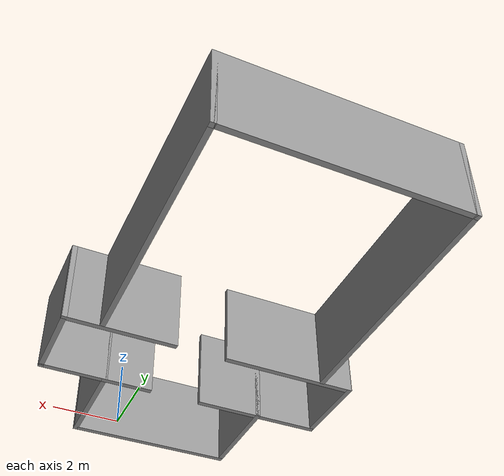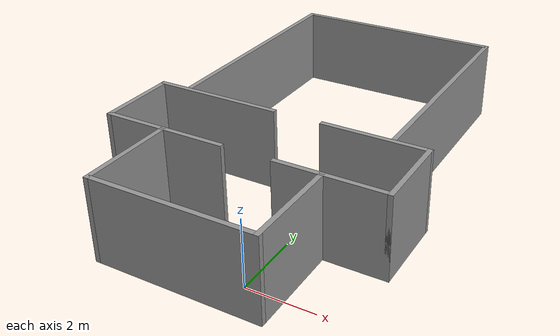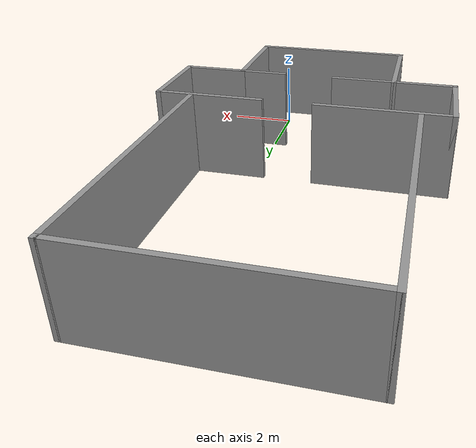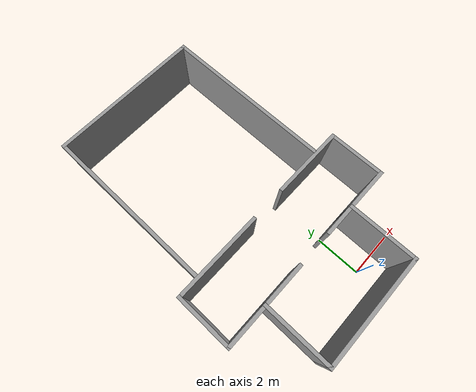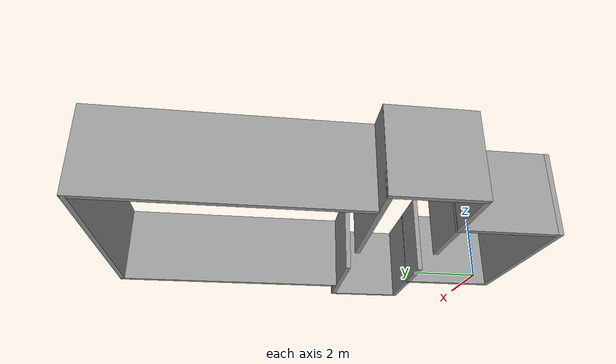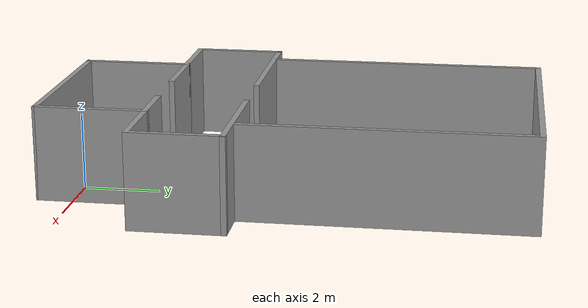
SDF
<?xml version='1.0'?>
<sdf version='1.7'>
  <model name='conference_room'>
    <pose>-1.36978 5.44487 0 0 -0 0</pose>
    <link name='Wall_17'>
      <collision name='Wall_17_Collision'>
        <geometry>
          <box>
            <size>3 0.15 2.5</size>
          </box>
        </geometry>
        <pose>0 0 1.25 0 -0 0</pose>
      </collision>
      <visual name='Wall_17_Visual'>
        <pose>0 0 1.25 0 -0 0</pose>
        <geometry>
          <box>
            <size>3 0.15 2.5</size>
          </box>
        </geometry>
        <material>
          <script>
            <uri>file://media/materials/scripts/gazebo.material</uri>
            <name>Gazebo/Grey</name>
          </script>
          <ambient>1 1 1 1</ambient>
        </material>
        <meta>
          <layer>0</layer>
        </meta>
      </visual>
      <pose>2.4174 -4.91209 0 0 -0 -1.5708</pose>
    </link>
    <link name='Wall_19'>
      <collision name='Wall_19_Collision'>
        <geometry>
          <box>
            <size>5 0.15 2.5</size>
          </box>
        </geometry>
        <pose>0 0 1.25 0 -0 0</pose>
      </collision>
      <visual name='Wall_19_Visual'>
        <pose>0 0 1.25 0 -0 0</pose>
        <geometry>
          <box>
            <size>5 0.15 2.5</size>
          </box>
        </geometry>
        <material>
          <script>
            <uri>file://media/materials/scripts/gazebo.material</uri>
            <name>Gazebo/Grey</name>
          </script>
          <ambient>1 1 1 1</ambient>
        </material>
        <meta>
          <layer>0</layer>
        </meta>
      </visual>
      <pose>-0.007604 -6.33709 0 0 -0 3.14159</pose>
    </link>
    <link name='Wall_20'>
      <collision name='Wall_20_Collision'>
        <geometry>
          <box>
            <size>3 0.15 2.5</size>
          </box>
        </geometry>
        <pose>0 0 1.25 0 -0 0</pose>
      </collision>
      <visual name='Wall_20_Visual'>
        <pose>0 0 1.25 0 -0 0</pose>
        <geometry>
          <box>
            <size>3 0.15 2.5</size>
          </box>
        </geometry>
        <material>
          <script>
            <uri>file://media/materials/scripts/gazebo.material</uri>
            <name>Gazebo/Grey</name>
          </script>
          <ambient>1 1 1 1</ambient>
        </material>
        <meta>
          <layer>0</layer>
        </meta>
      </visual>
      <pose>-2.4326 -4.91209 0 0 -0 1.5708</pose>
    </link>
    <link name='Wall_21'>
      <collision name='Wall_21_Collision'>
        <geometry>
          <box>
            <size>2 0.15 2.5</size>
          </box>
        </geometry>
        <pose>0 0 1.25 0 -0 0</pose>
      </collision>
      <visual name='Wall_21_Visual'>
        <pose>0 0 1.25 0 -0 0</pose>
        <geometry>
          <box>
            <size>2 0.15 2.5</size>
          </box>
        </geometry>
        <material>
          <script>
            <uri>file://media/materials/scripts/gazebo.material</uri>
            <name>Gazebo/Grey</name>
          </script>
          <ambient>1 1 1 1</ambient>
        </material>
        <meta>
          <layer>0</layer>
        </meta>
      </visual>
      <pose>-1.5076 -3.48709 0 0 -0 0</pose>
    </link>
    <link name='Wall_23'>
      <collision name='Wall_23_Collision'>
        <geometry>
          <box>
            <size>1.5 0.15 2.5</size>
          </box>
        </geometry>
        <pose>0 0 1.25 0 -0 0</pose>
      </collision>
      <visual name='Wall_23_Visual'>
        <pose>0 0 1.25 0 -0 0</pose>
        <geometry>
          <box>
            <size>1.5 0.15 2.5</size>
          </box>
        </geometry>
        <material>
          <script>
            <uri>file://media/materials/scripts/gazebo.material</uri>
            <name>Gazebo/Grey</name>
          </script>
          <ambient>1 1 1 1</ambient>
        </material>
        <meta>
          <layer>0</layer>
        </meta>
      </visual>
      <pose>1.7424 -3.48709 0 0 -0 3.14159</pose>
    </link>
    <link name='Wall_25'>
      <collision name='Wall_25_Collision'>
        <geometry>
          <box>
            <size>2 0.15 2.5</size>
          </box>
        </geometry>
        <pose>0 0 1.25 0 -0 0</pose>
      </collision>
      <visual name='Wall_25_Visual'>
        <pose>0 0 1.25 0 -0 0</pose>
        <geometry>
          <box>
            <size>2 0.15 2.5</size>
          </box>
        </geometry>
        <material>
          <script>
            <uri>file://media/materials/scripts/gazebo.material</uri>
            <name>Gazebo/Grey</name>
          </script>
          <ambient>1 1 1 1</ambient>
        </material>
        <meta>
          <layer>0</layer>
        </meta>
      </visual>
      <pose>3.3424 -3.48709 0 0 -0 0</pose>
    </link>
    <link name='Wall_26'>
      <collision name='Wall_26_Collision'>
        <geometry>
          <box>
            <size>2.5 0.15 2.5</size>
          </box>
        </geometry>
        <pose>0 0 1.25 0 -0 0</pose>
      </collision>
      <visual name='Wall_26_Visual'>
        <pose>0 0 1.25 0 -0 0</pose>
        <geometry>
          <box>
            <size>2.5 0.15 2.5</size>
          </box>
        </geometry>
        <material>
          <script>
            <uri>file://media/materials/scripts/gazebo.material</uri>
            <name>Gazebo/Grey</name>
          </script>
          <ambient>1 1 1 1</ambient>
        </material>
        <meta>
          <layer>0</layer>
        </meta>
      </visual>
      <pose>4.2674 -2.31209 0 0 -0 1.5708</pose>
    </link>
    <link name='Wall_27'>
      <collision name='Wall_27_Collision'>
        <geometry>
          <box>
            <size>3.25 0.15 2.5</size>
          </box>
        </geometry>
        <pose>0 0 1.25 0 -0 0</pose>
      </collision>
      <visual name='Wall_27_Visual'>
        <pose>0 0 1.25 0 -0 0</pose>
        <geometry>
          <box>
            <size>3.25 0.15 2.5</size>
          </box>
        </geometry>
        <material>
          <script>
            <uri>file://media/materials/scripts/gazebo.material</uri>
            <name>Gazebo/Grey</name>
          </script>
          <ambient>1 1 1 1</ambient>
        </material>
        <meta>
          <layer>0</layer>
        </meta>
      </visual>
      <pose>2.7174 -1.13709 0 0 -0 3.14159</pose>
    </link>
    <link name='Wall_29'>
      <collision name='Wall_29_Collision'>
        <geometry>
          <box>
            <size>1.96958 0.15 2.5</size>
          </box>
        </geometry>
        <pose>0 0 1.25 0 -0 0</pose>
      </collision>
      <visual name='Wall_29_Visual'>
        <pose>0 0 1.25 0 -0 0</pose>
        <geometry>
          <box>
            <size>1.96958 0.15 2.5</size>
          </box>
        </geometry>
        <material>
          <script>
            <uri>file://media/materials/scripts/gazebo.material</uri>
            <name>Gazebo/Grey</name>
          </script>
          <ambient>1 1 1 1</ambient>
        </material>
        <meta>
          <layer>0</layer>
        </meta>
      </visual>
      <pose>-3.34239 -3.48709 0 0 -0 3.14159</pose>
    </link>
    <link name='Wall_30'>
      <collision name='Wall_30_Collision'>
        <geometry>
          <box>
            <size>2.5 0.15 2.5</size>
          </box>
        </geometry>
        <pose>0 0 1.25 0 -0 0</pose>
      </collision>
      <visual name='Wall_30_Visual'>
        <pose>0 0 1.25 0 -0 0</pose>
        <geometry>
          <box>
            <size>2.5 0.15 2.5</size>
          </box>
        </geometry>
        <material>
          <script>
            <uri>file://media/materials/scripts/gazebo.material</uri>
            <name>Gazebo/Grey</name>
          </script>
          <ambient>1 1 1 1</ambient>
        </material>
        <meta>
          <layer>0</layer>
        </meta>
      </visual>
      <pose>-4.2674 -2.31209 0 0 -0 1.5708</pose>
    </link>
    <link name='Wall_31'>
      <collision name='Wall_31_Collision'>
        <geometry>
          <box>
            <size>3.96958 0.15 2.5</size>
          </box>
        </geometry>
        <pose>0 0 1.25 0 -0 0</pose>
      </collision>
      <visual name='Wall_31_Visual'>
        <pose>0 0 1.25 0 -0 0</pose>
        <geometry>
          <box>
            <size>3.96958 0.15 2.5</size>
          </box>
        </geometry>
        <material>
          <script>
            <uri>file://media/materials/scripts/gazebo.material</uri>
            <name>Gazebo/Grey</name>
          </script>
          <ambient>1 1 1 1</ambient>
        </material>
        <meta>
          <layer>0</layer>
        </meta>
      </visual>
      <pose>-2.34239 -1.13709 0 0 -0 0</pose>
    </link>
    <link name='Wall_39'>
      <collision name='Wall_39_Collision'>
        <geometry>
          <box>
            <size>7.5 0.15 2.5</size>
          </box>
        </geometry>
        <pose>0 0 1.25 0 -0 0</pose>
      </collision>
      <visual name='Wall_39_Visual'>
        <pose>0 0 1.25 0 -0 0</pose>
        <geometry>
          <box>
            <size>7.5 0.15 2.5</size>
          </box>
        </geometry>
        <material>
          <script>
            <uri>file://media/materials/scripts/gazebo.material</uri>
            <name>Gazebo/Grey</name>
          </script>
          <ambient>1 1 1 1</ambient>
        </material>
        <meta>
          <layer>0</layer>
        </meta>
      </visual>
      <pose>-3.36191 2.66209 0 0 -0 1.5708</pose>
    </link>
    <link name='Wall_40'>
      <collision name='Wall_40_Collision'>
        <geometry>
          <box>
            <size>6.75 0.15 2.5</size>
          </box>
        </geometry>
        <pose>0 0 1.25 0 -0 0</pose>
      </collision>
      <visual name='Wall_40_Visual'>
        <pose>0 0 1.25 0 -0 0</pose>
        <geometry>
          <box>
            <size>6.75 0.15 2.5</size>
          </box>
        </geometry>
        <material>
          <script>
            <uri>file://media/materials/scripts/gazebo.material</uri>
            <name>Gazebo/Grey</name>
          </script>
          <ambient>1 1 1 1</ambient>
        </material>
        <meta>
          <layer>0</layer>
        </meta>
      </visual>
      <pose>-0.061912 6.33709 0 0 -0 0</pose>
    </link>
    <link name='Wall_41'>
      <collision name='Wall_41_Collision'>
        <geometry>
          <box>
            <size>7.5 0.15 2.5</size>
          </box>
        </geometry>
        <pose>0 0 1.25 0 -0 0</pose>
      </collision>
      <visual name='Wall_41_Visual'>
        <pose>0 0 1.25 0 -0 0</pose>
        <geometry>
          <box>
            <size>7.5 0.15 2.5</size>
          </box>
        </geometry>
        <material>
          <script>
            <uri>file://media/materials/scripts/gazebo.material</uri>
            <name>Gazebo/Grey</name>
          </script>
          <ambient>1 1 1 1</ambient>
        </material>
        <meta>
          <layer>0</layer>
        </meta>
      </visual>
      <pose>3.23809 2.66209 0 0 -0 -1.5708</pose>
    </link>
    <static>1</static>
  </model>
</sdf>
